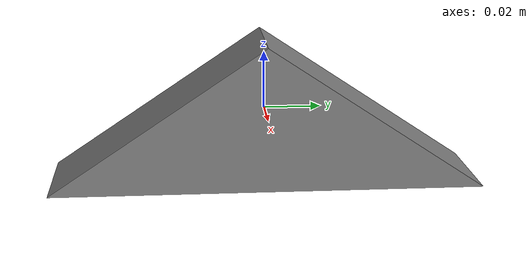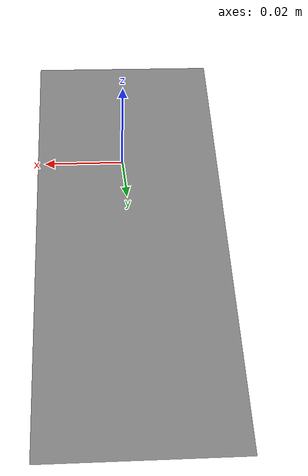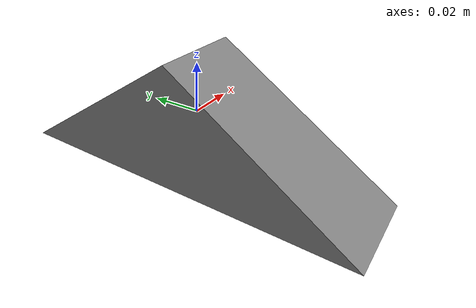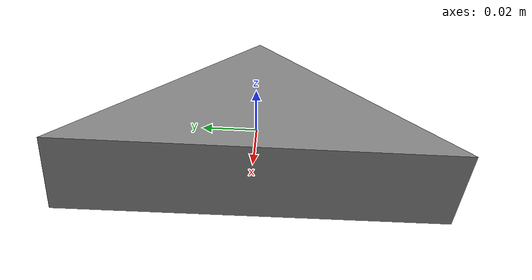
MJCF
<mujoco model="triangle">
  <asset>
    <mesh file="triangle_block.obj" name="triangle_mesh" scale="1 1 1"/>
    <material name="triangle_mat" reflectance="0.5" rgba="0.5 0.5 0.5 1"/>
  </asset>
  <worldbody>
    <body>
      <body name="object">
        <geom pos="0 0 0" mesh="triangle_mesh" type="mesh" solimp="0.9 0.95 0.001 0.5 2.0" solref="0.02 1" friction="1.0 0.005 0.0001" material="triangle_mat" group="0" condim="4"/>
        <inertial pos="0 0 0" mass="0.072" diaginertia="1e-4 1e-4 1e-4"/>
      </body>
      <!-- Bottom site (centered at base) -->
      <site rgba="0 0 0 0" size="0.005" pos="0 0 -0.025" name="bottom_site"/>
      <!-- Top site (apex point) -->
      <site rgba="0 0 0 0" size="0.005" pos="0 0 0.025" name="top_site"/>
      <!-- Center of mass site -->
      <site rgba="0 0 0 0" size="0.005" pos="0 0 -0.00833" name="horizontal_radius_site"/>
    </body>
  </worldbody>
</mujoco>
